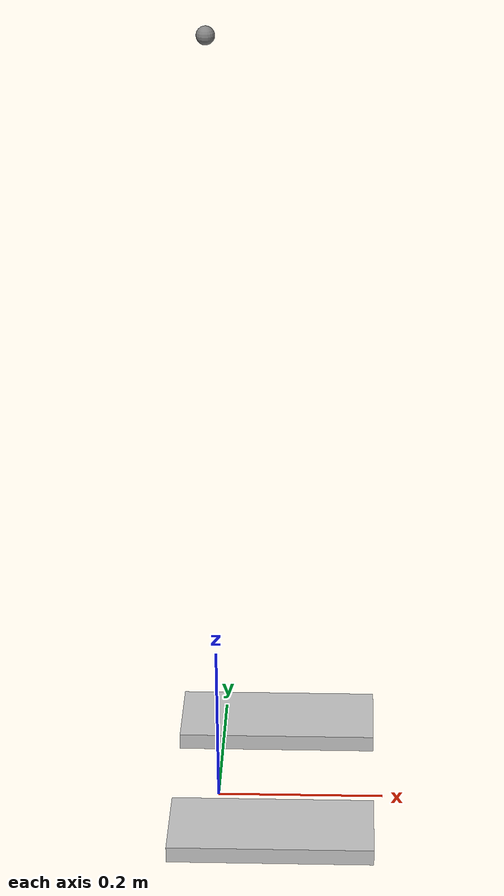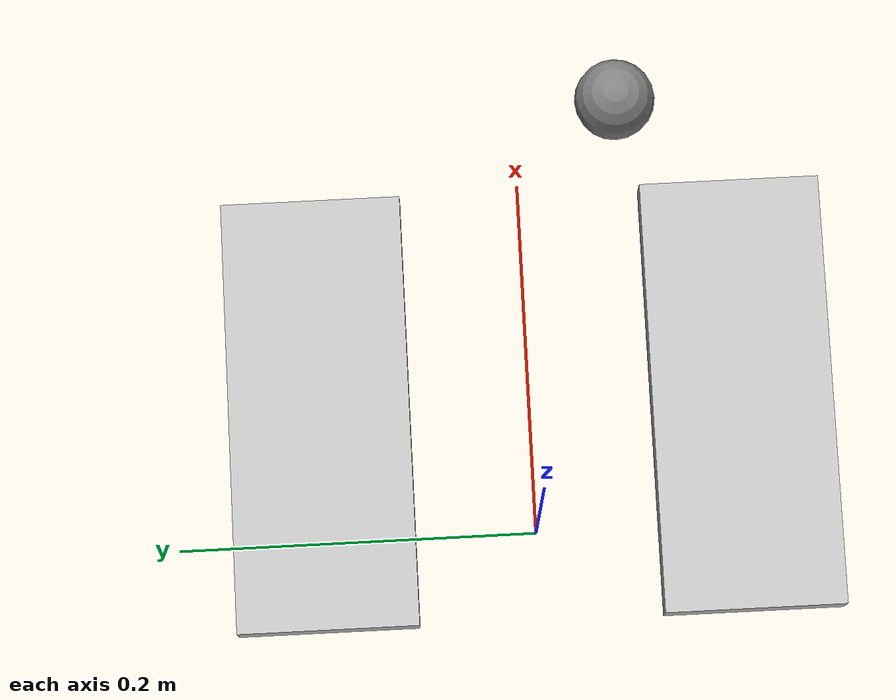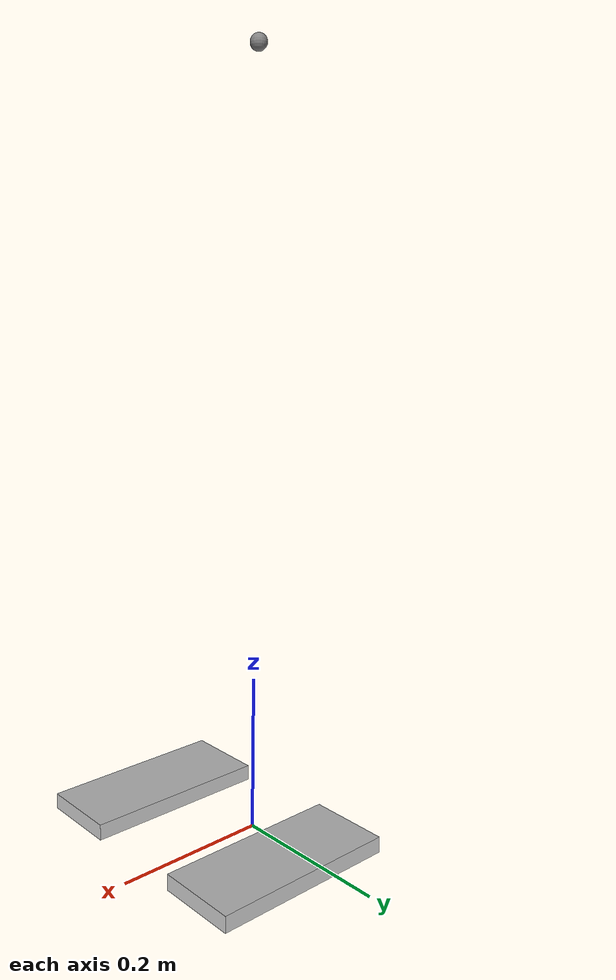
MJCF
<?xml version='1.0' encoding='utf-8'?>
<mujoco model="adam_pro_sharpa">
  <compiler angle="radian" />
  <worldbody>
    <body name="pelvis" pos="0 0 0.95">
      <inertial pos="-0.00034724 0 -0.00735759" quat="0.502838 0.502859 -0.497127 0.497143" mass="10.3565" diaginertia="0.0687803 0.0621174 0.0345151" />
      <site name="imu" size="0.01" pos="0 0 0" />
      <joint name="floating_base" type="free" limited="false" actuatorfrclimited="false" />
      <body name="hipPitchLeft" pos="0 0.0961925 -0.0332412" quat="0.953717 -0.300706 0 0">
        <inertial pos="-0.0566022 0.0576144 -0.00077159" quat="-0.0505313 0.548334 -0.448358 0.704097" mass="2.2338" diaginertia="0.00520115 0.00510328 0.00286381" />
        <joint name="hipPitch_Left" pos="0 0 0" axis="0 1 0" range="-2.164 2.164" actuatorfrcrange="-230 230" />
        <body name="hipRollLeft" pos="-0.0255 0.069 0" quat="0.953717 0.300706 0 0">
          <inertial pos="0.0392416 4.107e-05 -0.0103292" quat="0.0275849 0.82035 0.0241895 0.570683" mass="1.35108" diaginertia="0.00141452 0.00129056 0.00119603" />
          <joint name="hipRoll_Left" pos="0 0 0" axis="1 0 0" range="-0.733 1.605" actuatorfrcrange="-160 160" />
          <body name="thighLeft" pos="0.044 0 -0.0525">
            <inertial pos="0.00244052 -0.00866423 -0.134336" quat="0.711611 -0.0492483 0.0272749 0.700315" mass="6.43433" diaginertia="0.0639418 0.0583116 0.0126694" />
            <joint name="hipYaw_Left" pos="0 0 0" axis="0 0 1" range="-0.785 0.785" actuatorfrcrange="-105 105" />
            <body name="shinLeft" pos="0 -0.0355 -0.369">
              <inertial pos="-0.00053135 0.00081959 -0.145381" quat="0.788039 0.00408898 0.00696215 0.615572" mass="2.25363" diaginertia="0.0215921 0.0215141 0.00136466" />
              <joint name="kneePitch_Left" pos="0 0 0" axis="0 1 0" range="0.052 2.391" actuatorfrcrange="-230 230" />
              <body name="anklePitchLeft" pos="0 0 -0.37">
                <inertial pos="0 0 0" mass="0.0301423" diaginertia="3.14e-06 3.14e-06 2.04e-06" />
                <joint name="anklePitch_Left" pos="0 0 0" axis="0 1 0" range="-1 0.35" actuatorfrcrange="-40 40" />
                <body name="toeLeft">
                  <inertial pos="0.0374997 -4.016e-05 -0.0419674" quat="-0.0209271 0.743591 -0.0168677 0.668094" mass="0.634796" diaginertia="0.00233488 0.00226889 0.000434699" />
                  <joint name="ankleRoll_Left" pos="0 0 0" axis="1 0 0" range="-0.3491 0.3491" actuatorfrcrange="-12 12" />
                  <geom size="0.12 0.05 0.01" pos="0.05 0 -0.055" type="box" rgba="0.752941 0.752941 0.752941 1" />
                </body>
              </body>
            </body>
          </body>
        </body>
      </body>
      <body name="hipPitchRight" pos="0 -0.0961925 -0.0332412" quat="0.953717 0.300706 0 0">
        <inertial pos="-0.0566179 -0.0575934 -0.00078211" quat="0.0466125 0.551069 0.444978 0.704376" mass="2.23477" diaginertia="0.00520391 0.00510426 0.00286722" />
        <joint name="hipPitch_Right" pos="0 0 0" axis="0 1 0" range="-2.164 2.164" actuatorfrcrange="-230 230" />
        <body name="hipRollRight" pos="-0.0255 -0.069 0" quat="0.953717 -0.300706 0 0">
          <inertial pos="0.0392598 -5.814e-05 -0.0103241" quat="-0.02931 0.821547 -0.0263648 0.568776" mass="1.3517" diaginertia="0.00141668 0.00129138 0.00119538" />
          <joint name="hipRoll_Right" pos="0 0 0" axis="1 0 0" range="-1.605 0.733" actuatorfrcrange="-160 160" />
          <body name="thighRight" pos="0.044 0 -0.0525">
            <inertial pos="0.00245598 0.00865064 -0.134332" quat="0.700408 0.0274534 -0.0491764 0.711517" mass="6.43084" diaginertia="0.0639169 0.0582708 0.0126767" />
            <joint name="hipYaw_Right" pos="0 0 0" axis="0 0 1" range="-0.785 0.785" actuatorfrcrange="-105 105" />
            <body name="shinRight" pos="0 0.0355 -0.369">
              <inertial pos="-0.00052844 -0.00082152 -0.145334" quat="0.619488 0.00695186 0.00407547 0.784965" mass="2.25459" diaginertia="0.0215721 0.021496 0.00136482" />
              <joint name="kneePitch_Right" pos="0 0 0" axis="0 1 0" range="0.052 2.391" actuatorfrcrange="-230 230" />
              <body name="anklePitchRight" pos="0 0 -0.37">
                <inertial pos="0 0 0" mass="0.0301423" diaginertia="3.14e-06 3.14e-06 2.04e-06" />
                <joint name="anklePitch_Right" pos="0 0 0" axis="0 1 0" range="-1 0.35" actuatorfrcrange="-40 40" />
                <body name="toeRight">
                  <inertial pos="0.0375023 4.002e-05 -0.0419671" quat="0.0209768 0.743592 0.0169235 0.66809" mass="0.634808" diaginertia="0.00233489 0.00226889 0.000434726" />
                  <joint name="ankleRoll_Right" pos="0 0 0" axis="1 0 0" range="-0.3491 0.3491" actuatorfrcrange="-12 12" />
                  <geom size="0.12 0.05 0.01" pos="0.05 0 -0.055" type="box" rgba="0.752941 0.752941 0.752941 1" />
                </body>
              </body>
            </body>
          </body>
        </body>
      </body>
      <body name="waistRoll_link" pos="0 0 0.044">
        <inertial pos="0.00093826 0.00093832 0.0399999" quat="0.920274 -0.012433 -0.0050157 0.391045" mass="2.36268" diaginertia="0.00543214 0.00543129 0.00184735" />
        <joint name="waistRoll" pos="0 0 0" axis="1 0 0" range="-0.279 0.279" actuatorfrcrange="-110 110" />
        <body name="waistPitch_link" pos="0 0 0.08">
          <inertial pos="-8.401e-05 0.00189362 0.0254832" quat="0.480284 0.467519 -0.524152 0.525374" mass="0.563538" diaginertia="0.0015597 0.00151436 0.000672504" />
          <joint name="waistPitch" pos="0 0 0" axis="0 1 0" range="-0.663 1.361" actuatorfrcrange="-110 110" />
          <body name="torso" pos="0 0.0005 0.053">
            <inertial pos="-0.00183601 0.00056583 0.166624" quat="0.999452 -0.00189053 -0.0328345 0.00382224" mass="12.7334" diaginertia="0.13029 0.0859386 0.0736823" />
            <joint name="waistYaw" pos="0 0 0" axis="0 0 1" range="-0.829 0.829" actuatorfrcrange="-110 110" />
            <body name="shoulderPitchLeft" pos="0 0.165094 0.25923" quat="0.984808 0.173648 0 0">
              <inertial pos="0.00542694 0.0268987 0.00010792" quat="-0.0545235 0.707235 0.0545271 0.702761" mass="0.216148" diaginertia="0.000380648 0.000322754 0.000187228" />
              <joint name="shoulderPitch_Left" pos="0 0 0" axis="0 1 0" range="-3.613 2.042" actuatorfrcrange="-65 65" />
              <body name="shoulderRollLeft" pos="0.0362 0.0435 0" quat="0.984808 -0.173648 0 0">
                <inertial pos="-0.0343733 0.00962154 -0.0154456" quat="0.942019 0.255487 0.0666284 -0.207093" mass="1.07882" diaginertia="0.00167363 0.00165995 0.000668084" />
                <joint name="shoulderRoll_Left" pos="0 0 0" axis="1 0 0" range="-0.628 2.793" actuatorfrcrange="-65 65" />
                <body name="shoulderYawLeft" pos="-0.0362 0.034 -0.0797">
                  <inertial pos="-0.00051421 -0.00044442 -0.0619328" quat="0.999912 -0.00948825 0.00877343 0.00302026" mass="0.90142" diaginertia="0.00328641 0.0031732 0.000574119" />
                  <joint name="shoulderYaw_Left" pos="0 0 0" axis="0 0 1" range="-2.583 2.583" actuatorfrcrange="-65 65" />
                  <body name="elbowLeft" pos="0 -0.0285 -0.18295">
                    <inertial pos="-0.0140727 0.0292971 -0.0253473" quat="0.716894 0.14594 0.188043 0.65529" mass="0.917707" diaginertia="0.00110505 0.00109887 0.000457654" />
                    <joint name="elbow_Left" pos="0 0 0" axis="0 1 0" range="-2.496 0.209" actuatorfrcrange="-30 30" />
                    <body name="wristYawLeft" pos="-0.025 0.0285 -0.0729">
                      <inertial pos="-0.00174399 0.0001059 -0.0921606" quat="0.999719 0.00455358 0.00795284 0.0218673" mass="0.955879" diaginertia="0.00254019 0.00248455 0.000526048" />
                      <joint name="wristYaw_Left" pos="0 0 0" axis="0 0 1" range="-2.67 2.67" actuatorfrcrange="-6.4 6.4" />
                      <body name="wristPitchLeft" pos="0 0 -0.2017">
                        <inertial pos="-0.00017582 0.00166098 -2.773e-05" quat="0.501712 0.498275 -0.499779 0.500227" mass="0.119635" diaginertia="3.97702e-05 3.35901e-05 2.68997e-05" />
                        <joint name="wristPitch_Left" pos="0 0 0" axis="0 1 0" range="-0.96 0.96" actuatorfrcrange="-6.4 6.4" />
                        <body name="wristRollLeft">
                          <inertial pos="0.000691462 -0.0032265 -0.0813541" quat="0.998437 0.0436792 0.0155633 -0.0311899" mass="0.561689" diaginertia="0.000959476 0.000876782 0.000276973" />
                          <joint name="wristRoll_Left" pos="0 0 0" axis="1 0 0" range="-0.96 0.96" actuatorfrcrange="-6.4 6.4" />
                          <body name="left_thumb_CMC_VL" pos="0.026 -0.01 -0.0672" quat="0 1 1.8366e-06 5.10341e-12">
                            <inertial pos="-4.8e-09 -0.00086981 3.6e-09" quat="0.707107 0.707107 0 0" mass="0.000509" diaginertia="1.1167e-08 6.527e-09 5.388e-09" />
                            <joint name="left_thumb_CMC_FE" pos="0 0 0" axis="0 0 1" range="-0.1745 1.9199" actuatorfrcrange="-6.6 6.6" damping="0.1" />
                            <body name="left_thumb_MC" pos="0 -0.005 0" quat="0.65328 0.653282 -0.270598 0.270599">
                              <inertial pos="0.036729 -0.009124 -0.010102" quat="0.0873752 0.777787 -0.0963965 0.614915" mass="0.072329" diaginertia="0.000153362 0.000136171 2.43324e-05" />
                              <joint name="left_thumb_CMC_AA" pos="0 0 0" axis="0 0 1" range="-0.3491 0.3491" actuatorfrcrange="-6.6 6.6" damping="0.1" />
                              <body name="left_thumb_MCP_VL" pos="0.065 -0.006 -0.010392" quat="0.965926 -0.25882 0 0">
                                <inertial pos="4.8e-09 0.000869809 -3.6e-09" quat="0.707107 0.707107 0 0" mass="0.000509" diaginertia="1.1167e-08 6.527e-09 5.388e-09" />
                                <joint name="left_thumb_MCP_FE" pos="0 0 0" axis="0 0 1" range="-0.5236 1.3963" actuatorfrcrange="-3.728 3.728" damping="0.1" />
                                <body name="left_thumb_PP" quat="0.707105 0.707108 0 0">
                                  <inertial pos="0.0257652 -0.000314934 0.000890253" quat="0.454503 0.53381 0.453216 0.550517" mass="0.0647521" diaginertia="1.05835e-05 1.0487e-05 2.41074e-06" />
                                  <joint name="left_thumb_MCP_AA" pos="0 0 0" axis="0 0 1" range="-0.3491 0.3491" actuatorfrcrange="-3.728 3.728" damping="0.1" />
                                  <body name="left_thumb_DP" pos="0.039 0 0" quat="0.707105 -0.707108 0 0">
                                    <inertial pos="0.0227463 -0.000478405 -0.000107438" quat="0.381379 0.377639 0.604054 0.589116" mass="0.006767" diaginertia="6.72159e-07 6.29599e-07 1.6694e-07" />
                                    <joint name="left_thumb_IP" pos="0 0 0" axis="0 0 1" range="0 1.3963" actuatorfrcrange="-0.638 0.638" damping="0.1" />
                                  </body>
                                </body>
                              </body>
                            </body>
                          </body>
                          <body name="left_index_MCP_VL" pos="0.0303 -0.001 -0.1417" quat="1.29867e-06 0.707105 1.29867e-06 -0.707108">
                            <inertial pos="4.8e-09 0.00086981 -3.6e-09" quat="0.707107 0.707107 0 0" mass="0.000509" diaginertia="1.1167e-08 6.527e-09 5.388e-09" />
                            <joint name="left_index_MCP_FE" pos="0 0 0" axis="0 0 1" range="-0.8727 1.5708" actuatorfrcrange="-3.728 3.728" damping="0.1" />
                            <body name="left_index_PP" quat="0.707105 0.707108 0 0">
                              <inertial pos="0.02973 -0.00013902 0.00069319" quat="0.494881 0.489712 0.519831 0.495026" mass="0.1487" diaginertia="2.92258e-05 2.81816e-05 7.13865e-06" />
                              <joint name="left_index_MCP_AA" pos="0 0 0" axis="0 0 1" range="-0.3491 0.3491" actuatorfrcrange="-3.728 3.728" damping="0.1" />
                              <body name="left_index_MP" pos="0.047 0 0" quat="0.707105 -0.707108 0 0">
                                <inertial pos="0.019314 -0.00089299 -0.00018694" quat="-0.0843444 0.698531 -0.0192993 0.710329" mass="0.0091803" diaginertia="9.78177e-07 8.83779e-07 4.00284e-07" />
                                <joint name="left_index_PIP" pos="0 0 0" axis="0 0 1" range="0 1.7453" actuatorfrcrange="-0.638 0.638" damping="0.1" />
                                <body name="left_index_DP" pos="0.0315 0 0">
                                  <inertial pos="0.0154775 -0.0028464 0" quat="0.405506 0.405545 0.579234 0.579298" mass="0.005595" diaginertia="3.12859e-07 2.75042e-07 1.13825e-07" />
                                  <joint name="left_index_DIP" pos="0 0 0" axis="0 0 1" range="0 1.3963" actuatorfrcrange="-0.189369 0.189369" damping="0.1" />
                                </body>
                              </body>
                            </body>
                          </body>
                          <body name="left_middle_MCP_VL" pos="0.01 0 -0.1447" quat="1.29867e-06 0.707105 1.29867e-06 -0.707108">
                            <inertial pos="4.8e-09 0.00086981 -3.6e-09" quat="0.707107 0.707107 0 0" mass="0.000509" diaginertia="1.1167e-08 6.527e-09 5.388e-09" />
                            <joint name="left_middle_MCP_FE" pos="0 0 0" axis="0 0 1" range="-0.8727 1.5708" actuatorfrcrange="-3.728 3.728" damping="0.1" />
                            <body name="left_middle_PP" quat="0.707105 0.707108 0 0">
                              <inertial pos="0.02973 -0.00013902 0.00069319" quat="0.494881 0.489712 0.519831 0.495026" mass="0.1487" diaginertia="2.92258e-05 2.81816e-05 7.13865e-06" />
                              <joint name="left_middle_MCP_AA" pos="0 0 0" axis="0 0 1" range="-0.3491 0.3491" actuatorfrcrange="-3.728 3.728" damping="0.1" />
                              <body name="left_middle_MP" pos="0.047 0 0" quat="0.707105 -0.707108 0 0">
                                <inertial pos="0.019314 -0.00089299 -0.00018694" quat="-0.0843444 0.698531 -0.0192993 0.710329" mass="0.0091803" diaginertia="9.78177e-07 8.83779e-07 4.00284e-07" />
                                <joint name="left_middle_PIP" pos="0 0 0" axis="0 0 1" range="0 1.7453" actuatorfrcrange="-0.638 0.638" damping="0.1" />
                                <body name="left_middle_DP" pos="0.0315 0 0">
                                  <inertial pos="0.0154775 -0.0028464 0" quat="0.405506 0.405545 0.579234 0.579298" mass="0.005595" diaginertia="3.12859e-07 2.75042e-07 1.13825e-07" />
                                  <joint name="left_middle_DIP" pos="0 0 0" axis="0 0 1" range="0 1.3963" actuatorfrcrange="-0.189369 0.189369" damping="0.1" />
                                </body>
                              </body>
                            </body>
                          </body>
                          <body name="left_ring_MCP_VL" pos="-0.0103 -0.0015 -0.1387" quat="1.29867e-06 0.707105 1.29867e-06 -0.707108">
                            <inertial pos="4.8e-09 0.00086981 3.6e-09" quat="0.707107 0.707107 0 0" mass="0.000509" diaginertia="1.1167e-08 6.527e-09 5.388e-09" />
                            <joint name="left_ring_MCP_FE" pos="0 0 0" axis="0 0 1" range="-0.8727 1.5708" actuatorfrcrange="-3.728 3.728" damping="0.1" />
                            <body name="left_ring_PP" quat="0.707105 0.707108 0 0">
                              <inertial pos="0.02973 -0.00013902 0.00069319" quat="0.494881 0.489712 0.519831 0.495026" mass="0.1487" diaginertia="2.92258e-05 2.81816e-05 7.13865e-06" />
                              <joint name="left_ring_MCP_AA" pos="0 0 0" axis="0 0 1" range="-0.3491 0.3491" actuatorfrcrange="-3.728 3.728" damping="0.1" />
                              <body name="left_ring_MP" pos="0.047 0 0" quat="0.707105 -0.707108 0 0">
                                <inertial pos="0.019314 -0.00089299 -0.00018694" quat="-0.0843444 0.698531 -0.0192993 0.710329" mass="0.0091803" diaginertia="9.78177e-07 8.83779e-07 4.00284e-07" />
                                <joint name="left_ring_PIP" pos="0 0 0" axis="0 0 1" range="0 1.7453" actuatorfrcrange="-0.638 0.638" damping="0.1" />
                                <body name="left_ring_DP" pos="0.0315 0 0">
                                  <inertial pos="0.0154775 -0.00301768 2.72318e-08" quat="0.427447 0.427492 0.563227 0.563307" mass="0.005595" diaginertia="3.02433e-07 2.75333e-07 1.24542e-07" />
                                  <joint name="left_ring_DIP" pos="0 0 0" axis="0 0 1" range="0 1.3963" actuatorfrcrange="-0.189369 0.189369" damping="0.1" />
                                </body>
                              </body>
                            </body>
                          </body>
                          <body name="left_pinky_MC" pos="-0.0263 -0.01136 -0.1327" quat="-0.707109 2.59736e-06 2.59734e-06 -0.707104">
                            <inertial pos="0.0119415 0.00484458 0.0174284" quat="0.619191 0.11394 0.215264 0.746513" mass="0.0790656" diaginertia="5.77255e-05 5.081e-05 1.28135e-05" />
                            <joint name="left_pinky_CMC" pos="0 0 0" axis="0 0 1" range="0 0.2618" damping="0.1" />
                            <body name="left_pinky_MCP_VL" pos="0.00836 0.0048 0" quat="0.499998 -0.5 0.5 0.500002">
                              <inertial pos="4.8e-09 0.00086981 -3.6e-09" quat="0.707107 0.707107 0 0" mass="0.000509" diaginertia="1.1167e-08 6.527e-09 5.388e-09" />
                              <joint name="left_pinky_MCP_FE" pos="0 0 0" axis="0 0 1" range="-0.8727 1.5708" actuatorfrcrange="-3.728 3.728" damping="0.1" />
                              <body name="left_pinky_PP" quat="0.707105 0.707108 0 0">
                                <inertial pos="0.02973 -0.00013902 0.00069319" quat="0.494881 0.489712 0.519831 0.495026" mass="0.1487" diaginertia="2.92258e-05 2.81816e-05 7.13865e-06" />
                                <joint name="left_pinky_MCP_AA" pos="0 0 0" axis="0 0 1" range="-0.3491 0.3491" actuatorfrcrange="-3.728 3.728" damping="0.1" />
                                <body name="left_pinky_MP" pos="0.047 0 0" quat="0.707105 -0.707108 0 0">
                                  <inertial pos="0.019314 -0.00089299 -0.00018694" quat="-0.0843444 0.698531 -0.0192993 0.710329" mass="0.0091803" diaginertia="9.78177e-07 8.83779e-07 4.00284e-07" />
                                  <joint name="left_pinky_PIP" pos="0 0 0" axis="0 0 1" range="0 1.7453" actuatorfrcrange="-0.638 0.638" damping="0.1" />
                                  <body name="left_pinky_DP" pos="0.0315 0 0">
                                    <inertial pos="0.0154775 -0.0030177 0" quat="0.427448 0.427494 0.563228 0.563304" mass="0.005595" diaginertia="3.02432e-07 2.75332e-07 1.24542e-07" />
                                    <joint name="left_pinky_DIP" pos="0 0 0" axis="0 0 1" range="0 1.3963" actuatorfrcrange="-0.189369 0.189369" damping="0.1" />
                                  </body>
                                </body>
                              </body>
                            </body>
                          </body>
                        </body>
                      </body>
                    </body>
                  </body>
                </body>
              </body>
            </body>
            <body name="shoulderPitchRight" pos="0 -0.165094 0.25923" quat="0.984808 -0.173648 0 0">
              <inertial pos="0.00536737 -0.0269397 0.00010693" quat="0.0534521 0.70731 -0.0534944 0.702847" mass="0.216487" diaginertia="0.000381338 0.000323123 0.000187559" />
              <joint name="shoulderPitch_Right" pos="0 0 0" axis="0 1 0" range="-3.613 2.042" actuatorfrcrange="-65 65" />
              <body name="shoulderRollRight" pos="0.0362 -0.0435 0" quat="0.984808 0.173648 0 0">
                <inertial pos="-0.0342995 -0.00987424 -0.0157184" quat="0.935991 -0.254513 0.072526 0.232131" mass="1.08875" diaginertia="0.0017015 0.00168047 0.000675786" />
                <joint name="shoulderRoll_Right" pos="0 0 0" axis="1 0 0" range="-2.793 0.628" actuatorfrcrange="-65 65" />
                <body name="shoulderYawRight" pos="-0.0362 -0.034 -0.0797">
                  <inertial pos="-0.00051403 0.00046316 -0.0619299" quat="0.999904 0.00944783 0.00878884 -0.00513002" mass="0.901393" diaginertia="0.00328611 0.00317291 0.000574074" />
                  <joint name="shoulderYaw_Right" pos="0 0 0" axis="0 0 1" range="-2.583 2.583" actuatorfrcrange="-65 65" />
                  <body name="elbowRight" pos="0 0.0285 -0.18295">
                    <inertial pos="-0.0140891 -0.0292958 -0.0253475" quat="0.638945 0.191038 0.141578 0.73158" mass="0.917707" diaginertia="0.00110466 0.00109851 0.000457521" />
                    <joint name="elbow_Right" pos="0 0 0" axis="0 1 0" range="-2.496 0.209" actuatorfrcrange="-30 30" />
                    <body name="wristYawRight" pos="-0.025 -0.0285 -0.0729">
                      <inertial pos="-0.00173086 -0.00013146 -0.0921689" quat="0.999713 -0.00473049 0.00793689 -0.0221096" mass="0.955878" diaginertia="0.00254068 0.00248454 0.000525567" />
                      <joint name="wristYaw_Right" pos="0 0 0" axis="0 0 1" range="-2.67 2.67" actuatorfrcrange="-6.4 6.4" />
                      <body name="wristPitchRight" pos="0 0 -0.2017">
                        <inertial pos="-0.0001758 0.00166098 -2.773e-05" quat="0.501712 0.498275 -0.499779 0.500227" mass="0.119635" diaginertia="3.97702e-05 3.35901e-05 2.68997e-05" />
                        <joint name="wristPitch_Right" pos="0 0 0" axis="0 1 0" range="-0.96 0.96" actuatorfrcrange="-6.4 6.4" />
                        <body name="wristRollRight">
                          <inertial pos="0.000684646 0.00322744 -0.081363" quat="0.998442 -0.0436989 0.0154149 0.0311017" mass="0.561887" diaginertia="0.000959418 0.000876759 0.000276979" />
                          <joint name="wristRoll_Right" pos="0 0 0" axis="1 0 0" range="-0.96 0.96" actuatorfrcrange="-6.4 6.4" />
                          <body name="right_thumb_CMC_VL" pos="0.026 0.01 -0.0672" quat="-1 -3.67321e-06 1.6428e-12 1.8366e-06">
                            <inertial pos="-4.8e-09 0.00086981 3.6e-09" quat="0.707107 0.707107 0 0" mass="0.000509" diaginertia="1.1167e-08 6.527e-09 5.388e-09" />
                            <joint name="right_thumb_CMC_FE" pos="0 0 0" axis="0 0 1" range="-0.1745 1.9199" actuatorfrcrange="-6.6 6.6" damping="0.1" />
                            <body name="right_thumb_MC" pos="0 -0.005 0" quat="0.65328 -0.653282 0.270598 0.270599">
                              <inertial pos="0.036729 -0.009124 0.010102" quat="0.0963965 0.614915 -0.0873752 0.777787" mass="0.072329" diaginertia="0.000153362 0.000136171 2.43324e-05" />
                              <joint name="right_thumb_CMC_AA" pos="0 0 0" axis="0 0 1" range="-0.3491 0.3491" actuatorfrcrange="-6.6 6.6" damping="0.1" />
                              <body name="right_thumb_MCP_VL" pos="0.065 -0.006 0.010392" quat="0.965926 0.25882 0 0">
                                <inertial pos="4.8e-09 0.000869809 -3.6e-09" quat="0.707107 0.707107 0 0" mass="0.000509" diaginertia="1.1167e-08 6.527e-09 5.388e-09" />
                                <joint name="right_thumb_MCP_FE" pos="0 0 0" axis="0 0 1" range="-0.5236 1.3963" actuatorfrcrange="-3.728 3.728" damping="0.1" />
                                <body name="right_thumb_PP" quat="0.707105 -0.707108 0 0">
                                  <inertial pos="0.0257652 -0.000314934 -0.000890253" quat="0.53381 0.454503 0.550517 0.453216" mass="0.0647521" diaginertia="1.05835e-05 1.0487e-05 2.41074e-06" />
                                  <joint name="right_thumb_MCP_AA" pos="0 0 0" axis="0 0 1" range="-0.3491 0.3491" actuatorfrcrange="-3.728 3.728" damping="0.1" />
                                  <body name="right_thumb_DP" pos="0.039 0 0" quat="0.707105 0.707108 0 0">
                                    <inertial pos="0.0188663 -0.00108576 7.78439e-06" quat="0.316858 0.316535 0.632435 0.632007" mass="0.006517" diaginertia="3.62374e-07 3.08279e-07 1.54285e-07" />
                                    <joint name="right_thumb_IP" pos="0 0 0" axis="0 0 1" range="0 1.3963" actuatorfrcrange="-0.638 0.638" damping="0.1" />
                                  </body>
                                </body>
                              </body>
                            </body>
                          </body>
                          <body name="right_index_MCP_VL" pos="0.0303 0.001 -0.1417" quat="0.707108 -1.29867e-06 0.707105 1.29868e-06">
                            <inertial pos="4.8e-09 0.00086981 -3.6e-09" quat="0.707107 0.707107 0 0" mass="0.000509" diaginertia="1.1167e-08 6.527e-09 5.388e-09" />
                            <joint name="right_index_MCP_FE" pos="0 0 0" axis="0 0 1" range="-0.8727 1.5708" actuatorfrcrange="-3.728 3.728" damping="0.1" />
                            <body name="right_index_PP" quat="0.707105 -0.707108 0 0">
                              <inertial pos="0.02973 0.00013902 -0.00069319" quat="0.519831 0.495026 0.494881 0.489712" mass="0.1487" diaginertia="2.92258e-05 2.81816e-05 7.13865e-06" />
                              <joint name="right_index_MCP_AA" pos="0 0 0" axis="0 0 1" range="-0.3491 0.3491" actuatorfrcrange="-3.728 3.728" damping="0.1" />
                              <body name="right_index_MP" pos="0.047 0 0" quat="0.707105 0.707108 0 0">
                                <inertial pos="0.019314 -0.00089299 -0.00018694" quat="-0.0843444 0.698531 -0.0192993 0.710329" mass="0.0091803" diaginertia="9.78177e-07 8.83779e-07 4.00284e-07" />
                                <joint name="right_index_PIP" pos="0 0 0" axis="0 0 1" range="0 1.7453" actuatorfrcrange="-0.638 0.638" damping="0.1" />
                                <body name="right_index_DP" pos="0.0315 0 0">
                                  <inertial pos="0.017701 -0.00338368 3.40138e-08" quat="0.453301 0.453498 0.542517 0.54271" mass="0.005345" diaginertia="3.82688e-07 3.75838e-07 8.55338e-08" />
                                  <joint name="right_index_DIP" pos="0 0 0" axis="0 0 1" range="0 1.3963" actuatorfrcrange="-0.189369 0.189369" damping="0.1" />
                                </body>
                              </body>
                            </body>
                          </body>
                          <body name="right_middle_MCP_VL" pos="0.01 0 -0.1447" quat="0.707108 -1.29867e-06 0.707105 1.29868e-06">
                            <inertial pos="4.8e-09 0.00086981 -3.6e-09" quat="0.707107 0.707107 0 0" mass="0.000509" diaginertia="1.1167e-08 6.527e-09 5.388e-09" />
                            <joint name="right_middle_MCP_FE" pos="0 0 0" axis="0 0 1" range="-0.8727 1.5708" actuatorfrcrange="-3.728 3.728" damping="0.1" />
                            <body name="right_middle_PP" quat="0.707105 -0.707108 0 0">
                              <inertial pos="0.02973 0.00013902 -0.00069319" quat="0.509824 0.505019 0.497296 0.487579" mass="0.1487" diaginertia="2.92251e-05 2.81742e-05 7.14667e-06" />
                              <joint name="right_middle_MCP_AA" pos="0 0 0" axis="0 0 1" range="-0.3491 0.3491" actuatorfrcrange="-3.728 3.728" damping="0.1" />
                              <body name="right_middle_MP" pos="0.047 0 0" quat="0.707105 0.707108 0 0">
                                <inertial pos="0.019314 -0.00089299 -0.00018694" quat="-0.0843444 0.698531 -0.0192993 0.710329" mass="0.0091803" diaginertia="9.78177e-07 8.83779e-07 4.00284e-07" />
                                <joint name="right_middle_PIP" pos="0 0 0" axis="0 0 1" range="0 1.7453" actuatorfrcrange="-0.638 0.638" damping="0.1" />
                                <body name="right_middle_DP" pos="0.0315 0 0">
                                  <inertial pos="0.0146041 -0.00292499 0" quat="0.352568 0.352601 0.61289 0.612971" mass="0.005345" diaginertia="2.29712e-07 1.80457e-07 1.01345e-07" />
                                  <joint name="right_middle_DIP" pos="0 0 0" axis="0 0 1" range="0 1.3963" actuatorfrcrange="-0.189369 0.189369" damping="0.1" />
                                </body>
                              </body>
                            </body>
                          </body>
                          <body name="right_ring_MCP_VL" pos="-0.0103 0.0015 -0.1387" quat="0.707108 -1.29867e-06 0.707105 1.29868e-06">
                            <inertial pos="4.8e-09 0.00086981 -3.6e-09" quat="0.707107 0.707107 0 0" mass="0.000509" diaginertia="1.1167e-08 6.527e-09 5.388e-09" />
                            <joint name="right_ring_MCP_FE" pos="0 0 0" axis="0 0 1" range="-0.8727 1.5708" actuatorfrcrange="-3.728 3.728" damping="0.1" />
                            <body name="right_ring_PP" quat="0.707105 -0.707108 0 0">
                              <inertial pos="0.02973 0.00013902 -0.00069319" quat="0.509824 0.505019 0.497296 0.487579" mass="0.1487" diaginertia="2.92251e-05 2.81742e-05 7.14667e-06" />
                              <joint name="right_ring_MCP_AA" pos="0 0 0" axis="0 0 1" range="-0.3491 0.3491" actuatorfrcrange="-3.728 3.728" damping="0.1" />
                              <body name="right_ring_MP" pos="0.047 0 0" quat="0.707105 0.707108 0 0">
                                <inertial pos="0.019314 -0.00089299 -0.00018694" quat="-0.0843444 0.698531 -0.0192993 0.710329" mass="0.0091803" diaginertia="9.78177e-07 8.83779e-07 4.00284e-07" />
                                <joint name="right_ring_PIP" pos="0 0 0" axis="0 0 1" range="0 1.7453" actuatorfrcrange="-0.638 0.638" damping="0.1" />
                                <body name="right_ring_DP" pos="0.0315 0 0">
                                  <inertial pos="0.0146041 -0.00292496 2.26384e-08" quat="0.352568 0.352599 0.612889 0.612974" mass="0.005345" diaginertia="2.29713e-07 1.80457e-07 1.01344e-07" />
                                  <joint name="right_ring_DIP" pos="0 0 0" axis="0 0 1" range="0 1.3963" actuatorfrcrange="-0.189369 0.189369" damping="0.1" />
                                </body>
                              </body>
                            </body>
                          </body>
                          <body name="right_pinky_MC" pos="-0.0263 0.01136 -0.1327" quat="3.60867e-12 0.707104 -0.707109 -3.60864e-12">
                            <inertial pos="0.0119415 0.00484458 -0.0174284" quat="0.619191 -0.11394 -0.215264 0.746513" mass="0.0790656" diaginertia="5.77255e-05 5.081e-05 1.28135e-05" />
                            <joint name="right_pinky_CMC" pos="0 0 0" axis="0 0 1" range="0 0.2618" damping="0.1" />
                            <body name="right_pinky_MCP_VL" pos="0.00836 0.0048 0" quat="0.499998 0.5 -0.5 0.500002">
                              <inertial pos="4.8e-09 0.00086981 -3.6e-09" quat="0.707107 0.707107 0 0" mass="0.000509" diaginertia="1.1167e-08 6.527e-09 5.388e-09" />
                              <joint name="right_pinky_MCP_FE" pos="0 0 0" axis="0 0 1" range="-0.8727 1.5708" actuatorfrcrange="-3.728 3.728" damping="0.1" />
                              <body name="right_pinky_PP" quat="0.707105 -0.707108 0 0">
                                <inertial pos="0.02973 0.00013902 -0.00069319" quat="0.509824 0.505019 0.497296 0.487579" mass="0.1487" diaginertia="2.92251e-05 2.81742e-05 7.14667e-06" />
                                <joint name="right_pinky_MCP_AA" pos="0 0 0" axis="0 0 1" range="-0.3491 0.3491" actuatorfrcrange="-3.728 3.728" damping="0.1" />
                                <body name="right_pinky_MP" pos="0.047 0 0" quat="0.707105 0.707108 0 0">
                                  <inertial pos="0.019314 -0.00089299 -0.00018694" quat="-0.0843444 0.698531 -0.0192993 0.710329" mass="0.0091803" diaginertia="9.78177e-07 8.83779e-07 4.00284e-07" />
                                  <joint name="right_pinky_PIP" pos="0 0 0" axis="0 0 1" range="0 1.7453" actuatorfrcrange="-0.638 0.638" damping="0.1" />
                                  <body name="right_pinky_DP" pos="0.0315 0 0">
                                    <inertial pos="0.0146041 -0.00292496 2.26384e-08" quat="0.352568 0.352599 0.612889 0.612974" mass="0.005345" diaginertia="2.29713e-07 1.80457e-07 1.01344e-07" />
                                    <joint name="right_pinky_DIP" pos="0 0 0" axis="0 0 1" range="0 1.3963" actuatorfrcrange="-0.189369 0.189369" damping="0.1" />
                                  </body>
                                </body>
                              </body>
                            </body>
                          </body>
                        </body>
                      </body>
                    </body>
                  </body>
                </body>
              </body>
            </body>
            <body name="neckYaw_link" pos="-0.013 0 0.29855">
              <inertial pos="0.0228442 -0.00120876 0.0992634" quat="0.719761 0.0861591 0.0813325 0.684036" mass="0.399168" diaginertia="0.00132274 0.00131438 0.000128684" />
              <joint name="neckYaw" pos="0 0 0" axis="0 0 1" range="-1.571 1.571" actuatorfrcrange="-6.4 6.4" />
              <body name="neckPitch_link" pos="0.0316 0.01995 0.14595">
                <inertial pos="0.0174597 -0.0210407 0.0470534" quat="0.0369738 0.852876 0.0341259 0.519683" mass="0.956204" diaginertia="0.00368991 0.00348806 0.00231156" />
                <joint name="neckPitch" pos="0 0 0" axis="0 1 0" range="-0.873 0.873" actuatorfrcrange="-6.4 6.4" />
              </body>
            </body>
          </body>
        </body>
      </body>
    </body>
  </worldbody>
</mujoco>
